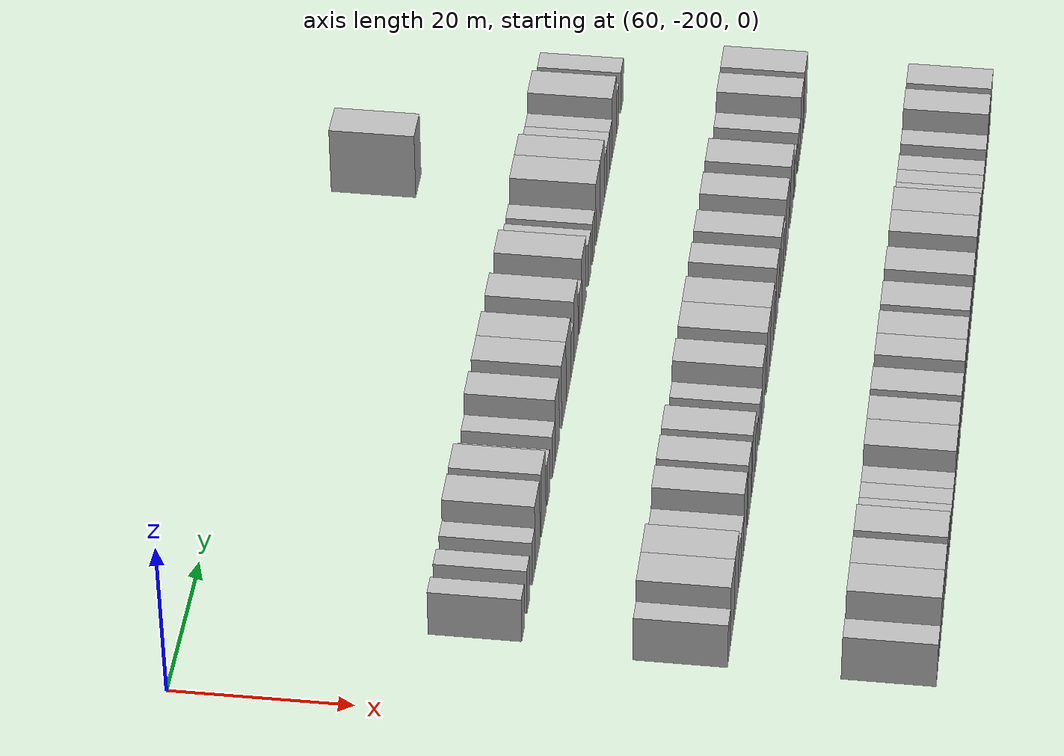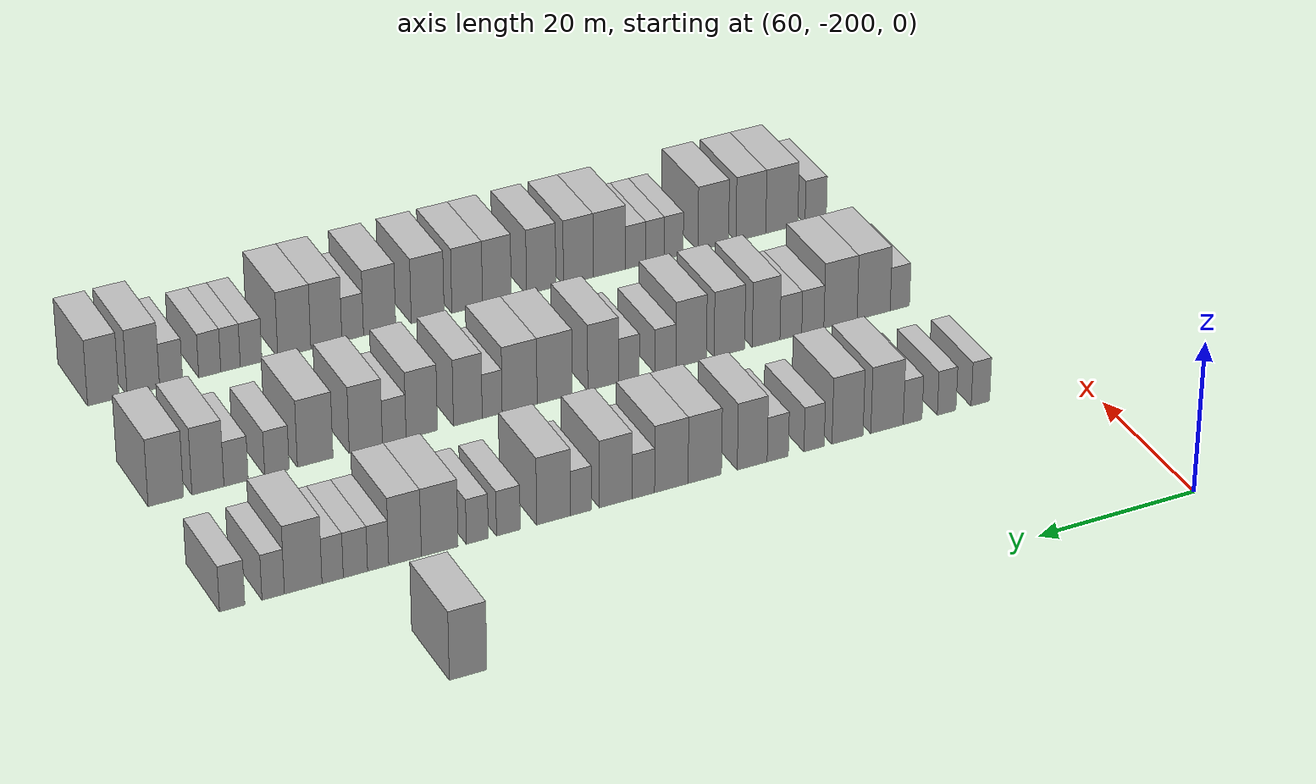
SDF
<sdf version="1.6">
 <world name="default">
  <model name="building_466">
   <static>1</static>
   <pose>69.0000 -112.4881 0 0.000000 0.000000 0.000000</pose>
   <link name="link">
    <pose>0 0 4.50 0 0 0</pose>
    <collision name="collision"><geometry><box><size>10.0000 4.3777 9.0000</size></box></geometry></collision>
    <visual name="visual">
     <cast_shadows>0</cast_shadows>
     <geometry><box><size>10.0000 4.3777 9.0000</size></box></geometry>
     <material>
      <script>
       <uri>model://HANNAS_wall/materials/scripts</uri>
       <uri>model://HANNAS_wall/materials/textures</uri>
       <name>vrc/HANNAS_wall</name>
      </script>
     </material>
    </visual>
   </link>
  </model>
  <model name="building_626">
   <static>1</static>
   <pose>91.0000 -187.1028 0 0.000000 0.000000 0.000000</pose>
   <link name="link">
    <pose>0 0 3.00 0 0 0</pose>
    <collision name="collision"><geometry><box><size>10.0000 2.4360 6.0000</size></box></geometry></collision>
    <visual name="visual">
     <cast_shadows>0</cast_shadows>
     <geometry><box><size>10.0000 2.4360 6.0000</size></box></geometry>
     <material>
      <script>
       <uri>model://HANNAS_wall/materials/scripts</uri>
       <uri>model://HANNAS_wall/materials/textures</uri>
       <name>vrc/HANNAS_wall</name>
      </script>
     </material>
    </visual>
   </link>
  </model>
  <model name="building_627">
   <static>1</static>
   <pose>91.0000 -182.6619 0 0.000000 0.000000 0.000000</pose>
   <link name="link">
    <pose>0 0 3.00 0 0 0</pose>
    <collision name="collision"><geometry><box><size>10.0000 2.4458 6.0000</size></box></geometry></collision>
    <visual name="visual">
     <cast_shadows>0</cast_shadows>
     <geometry><box><size>10.0000 2.4458 6.0000</size></box></geometry>
     <material>
      <script>
       <uri>model://HANNAS_wall/materials/scripts</uri>
       <uri>model://HANNAS_wall/materials/textures</uri>
       <name>vrc/HANNAS_wall</name>
      </script>
     </material>
    </visual>
   </link>
  </model>
  <model name="building_628">
   <static>1</static>
   <pose>91.0000 -178.2104 0 0.000000 0.000000 0.000000</pose>
   <link name="link">
    <pose>0 0 3.00 0 0 0</pose>
    <collision name="collision"><geometry><box><size>10.0000 2.4572 6.0000</size></box></geometry></collision>
    <visual name="visual">
     <cast_shadows>0</cast_shadows>
     <geometry><box><size>10.0000 2.4572 6.0000</size></box></geometry>
     <material>
      <script>
       <uri>model://HANNAS_wall/materials/scripts</uri>
       <uri>model://HANNAS_wall/materials/textures</uri>
       <name>vrc/HANNAS_wall</name>
      </script>
     </material>
    </visual>
   </link>
  </model>
  <model name="building_629">
   <static>1</static>
   <pose>91.0000 -174.8747 0 0.000000 0.000000 0.000000</pose>
   <link name="link">
    <pose>0 0 4.50 0 0 0</pose>
    <collision name="collision"><geometry><box><size>10.0000 4.2143 9.0000</size></box></geometry></collision>
    <visual name="visual">
     <cast_shadows>0</cast_shadows>
     <geometry><box><size>10.0000 4.2143 9.0000</size></box></geometry>
     <material>
      <script>
       <uri>model://HANNAS_wall/materials/scripts</uri>
       <uri>model://HANNAS_wall/materials/textures</uri>
       <name>vrc/HANNAS_wall</name>
      </script>
     </material>
    </visual>
   </link>
  </model>
  <model name="building_630">
   <static>1</static>
   <pose>91.0000 -169.7612 0 0.000000 0.000000 0.000000</pose>
   <link name="link">
    <pose>0 0 4.50 0 0 0</pose>
    <collision name="collision"><geometry><box><size>10.0000 4.0127 9.0000</size></box></geometry></collision>
    <visual name="visual">
     <cast_shadows>0</cast_shadows>
     <geometry><box><size>10.0000 4.0127 9.0000</size></box></geometry>
     <material>
      <script>
       <uri>model://HANNAS_wall/materials/scripts</uri>
       <uri>model://HANNAS_wall/materials/textures</uri>
       <name>vrc/HANNAS_wall</name>
      </script>
     </material>
    </visual>
   </link>
  </model>
  <model name="building_631">
   <static>1</static>
   <pose>91.0000 -165.4593 0 0.000000 0.000000 0.000000</pose>
   <link name="link">
    <pose>0 0 3.00 0 0 0</pose>
    <collision name="collision"><geometry><box><size>10.0000 2.5912 6.0000</size></box></geometry></collision>
    <visual name="visual">
     <cast_shadows>0</cast_shadows>
     <geometry><box><size>10.0000 2.5912 6.0000</size></box></geometry>
     <material>
      <script>
       <uri>model://HANNAS_wall/materials/scripts</uri>
       <uri>model://HANNAS_wall/materials/textures</uri>
       <name>vrc/HANNAS_wall</name>
      </script>
     </material>
    </visual>
   </link>
  </model>
  <model name="building_632">
   <static>1</static>
   <pose>91.0000 -160.8114 0 0.000000 0.000000 0.000000</pose>
   <link name="link">
    <pose>0 0 3.00 0 0 0</pose>
    <collision name="collision"><geometry><box><size>10.0000 2.7045 6.0000</size></box></geometry></collision>
    <visual name="visual">
     <cast_shadows>0</cast_shadows>
     <geometry><box><size>10.0000 2.7045 6.0000</size></box></geometry>
     <material>
      <script>
       <uri>model://HANNAS_wall/materials/scripts</uri>
       <uri>model://HANNAS_wall/materials/textures</uri>
       <name>vrc/HANNAS_wall</name>
      </script>
     </material>
    </visual>
   </link>
  </model>
  <model name="building_633">
   <static>1</static>
   <pose>91.0000 -157.5620 0 0.000000 0.000000 0.000000</pose>
   <link name="link">
    <pose>0 0 4.50 0 0 0</pose>
    <collision name="collision"><geometry><box><size>10.0000 3.7942 9.0000</size></box></geometry></collision>
    <visual name="visual">
     <cast_shadows>0</cast_shadows>
     <geometry><box><size>10.0000 3.7942 9.0000</size></box></geometry>
     <material>
      <script>
       <uri>model://HANNAS_wall/materials/scripts</uri>
       <uri>model://HANNAS_wall/materials/textures</uri>
       <name>vrc/HANNAS_wall</name>
      </script>
     </material>
    </visual>
   </link>
  </model>
  <model name="building_634">
   <static>1</static>
   <pose>91.0000 -151.5639 0 0.000000 0.000000 0.000000</pose>
   <link name="link">
    <pose>0 0 4.50 0 0 0</pose>
    <collision name="collision"><geometry><box><size>10.0000 4.2022 9.0000</size></box></geometry></collision>
    <visual name="visual">
     <cast_shadows>0</cast_shadows>
     <geometry><box><size>10.0000 4.2022 9.0000</size></box></geometry>
     <material>
      <script>
       <uri>model://HANNAS_wall/materials/scripts</uri>
       <uri>model://HANNAS_wall/materials/textures</uri>
       <name>vrc/HANNAS_wall</name>
      </script>
     </material>
    </visual>
   </link>
  </model>
  <model name="building_635">
   <static>1</static>
   <pose>91.0000 -147.3639 0 0.000000 0.000000 0.000000</pose>
   <link name="link">
    <pose>0 0 4.50 0 0 0</pose>
    <collision name="collision"><geometry><box><size>10.0000 4.1977 9.0000</size></box></geometry></collision>
    <visual name="visual">
     <cast_shadows>0</cast_shadows>
     <geometry><box><size>10.0000 4.1977 9.0000</size></box></geometry>
     <material>
      <script>
       <uri>model://HANNAS_wall/materials/scripts</uri>
       <uri>model://HANNAS_wall/materials/textures</uri>
       <name>vrc/HANNAS_wall</name>
      </script>
     </material>
    </visual>
   </link>
  </model>
  <model name="building_636">
   <static>1</static>
   <pose>91.0000 -143.8838 0 0.000000 0.000000 0.000000</pose>
   <link name="link">
    <pose>0 0 3.00 0 0 0</pose>
    <collision name="collision"><geometry><box><size>10.0000 2.7626 6.0000</size></box></geometry></collision>
    <visual name="visual">
     <cast_shadows>0</cast_shadows>
     <geometry><box><size>10.0000 2.7626 6.0000</size></box></geometry>
     <material>
      <script>
       <uri>model://HANNAS_wall/materials/scripts</uri>
       <uri>model://HANNAS_wall/materials/textures</uri>
       <name>vrc/HANNAS_wall</name>
      </script>
     </material>
    </visual>
   </link>
  </model>
  <model name="building_637">
   <static>1</static>
   <pose>91.0000 -140.4628 0 0.000000 0.000000 0.000000</pose>
   <link name="link">
    <pose>0 0 4.50 0 0 0</pose>
    <collision name="collision"><geometry><box><size>10.0000 4.0793 9.0000</size></box></geometry></collision>
    <visual name="visual">
     <cast_shadows>0</cast_shadows>
     <geometry><box><size>10.0000 4.0793 9.0000</size></box></geometry>
     <material>
      <script>
       <uri>model://HANNAS_wall/materials/scripts</uri>
       <uri>model://HANNAS_wall/materials/textures</uri>
       <name>vrc/HANNAS_wall</name>
      </script>
     </material>
    </visual>
   </link>
  </model>
  <model name="building_638">
   <static>1</static>
   <pose>91.0000 -136.1418 0 0.000000 0.000000 0.000000</pose>
   <link name="link">
    <pose>0 0 3.00 0 0 0</pose>
    <collision name="collision"><geometry><box><size>10.0000 2.5629 6.0000</size></box></geometry></collision>
    <visual name="visual">
     <cast_shadows>0</cast_shadows>
     <geometry><box><size>10.0000 2.5629 6.0000</size></box></geometry>
     <material>
      <script>
       <uri>model://HANNAS_wall/materials/scripts</uri>
       <uri>model://HANNAS_wall/materials/textures</uri>
       <name>vrc/HANNAS_wall</name>
      </script>
     </material>
    </visual>
   </link>
  </model>
  <model name="building_639">
   <static>1</static>
   <pose>91.0000 -132.7663 0 0.000000 0.000000 0.000000</pose>
   <link name="link">
    <pose>0 0 4.50 0 0 0</pose>
    <collision name="collision"><geometry><box><size>10.0000 4.1881 9.0000</size></box></geometry></collision>
    <visual name="visual">
     <cast_shadows>0</cast_shadows>
     <geometry><box><size>10.0000 4.1881 9.0000</size></box></geometry>
     <material>
      <script>
       <uri>model://HANNAS_wall/materials/scripts</uri>
       <uri>model://HANNAS_wall/materials/textures</uri>
       <name>vrc/HANNAS_wall</name>
      </script>
     </material>
    </visual>
   </link>
  </model>
  <model name="building_640">
   <static>1</static>
   <pose>91.0000 -127.2252 0 0.000000 0.000000 0.000000</pose>
   <link name="link">
    <pose>0 0 3.00 0 0 0</pose>
    <collision name="collision"><geometry><box><size>10.0000 2.8943 6.0000</size></box></geometry></collision>
    <visual name="visual">
     <cast_shadows>0</cast_shadows>
     <geometry><box><size>10.0000 2.8943 6.0000</size></box></geometry>
     <material>
      <script>
       <uri>model://HANNAS_wall/materials/scripts</uri>
       <uri>model://HANNAS_wall/materials/textures</uri>
       <name>vrc/HANNAS_wall</name>
      </script>
     </material>
    </visual>
   </link>
  </model>
  <model name="building_641">
   <static>1</static>
   <pose>91.0000 -123.4506 0 0.000000 0.000000 0.000000</pose>
   <link name="link">
    <pose>0 0 3.00 0 0 0</pose>
    <collision name="collision"><geometry><box><size>10.0000 2.6549 6.0000</size></box></geometry></collision>
    <visual name="visual">
     <cast_shadows>0</cast_shadows>
     <geometry><box><size>10.0000 2.6549 6.0000</size></box></geometry>
     <material>
      <script>
       <uri>model://HANNAS_wall/materials/scripts</uri>
       <uri>model://HANNAS_wall/materials/textures</uri>
       <name>vrc/HANNAS_wall</name>
      </script>
     </material>
    </visual>
   </link>
  </model>
  <model name="building_642">
   <static>1</static>
   <pose>91.0000 -118.9089 0 0.000000 0.000000 0.000000</pose>
   <link name="link">
    <pose>0 0 4.50 0 0 0</pose>
    <collision name="collision"><geometry><box><size>10.0000 4.4286 9.0000</size></box></geometry></collision>
    <visual name="visual">
     <cast_shadows>0</cast_shadows>
     <geometry><box><size>10.0000 4.4286 9.0000</size></box></geometry>
     <material>
      <script>
       <uri>model://HANNAS_wall/materials/scripts</uri>
       <uri>model://HANNAS_wall/materials/textures</uri>
       <name>vrc/HANNAS_wall</name>
      </script>
     </material>
    </visual>
   </link>
  </model>
  <model name="building_643">
   <static>1</static>
   <pose>91.0000 -114.7379 0 0.000000 0.000000 0.000000</pose>
   <link name="link">
    <pose>0 0 4.50 0 0 0</pose>
    <collision name="collision"><geometry><box><size>10.0000 3.9134 9.0000</size></box></geometry></collision>
    <visual name="visual">
     <cast_shadows>0</cast_shadows>
     <geometry><box><size>10.0000 3.9134 9.0000</size></box></geometry>
     <material>
      <script>
       <uri>model://HANNAS_wall/materials/scripts</uri>
       <uri>model://HANNAS_wall/materials/textures</uri>
       <name>vrc/HANNAS_wall</name>
      </script>
     </material>
    </visual>
   </link>
  </model>
  <model name="building_644">
   <static>1</static>
   <pose>91.0000 -111.5199 0 0.000000 0.000000 0.000000</pose>
   <link name="link">
    <pose>0 0 3.00 0 0 0</pose>
    <collision name="collision"><geometry><box><size>10.0000 2.5226 6.0000</size></box></geometry></collision>
    <visual name="visual">
     <cast_shadows>0</cast_shadows>
     <geometry><box><size>10.0000 2.5226 6.0000</size></box></geometry>
     <material>
      <script>
       <uri>model://HANNAS_wall/materials/scripts</uri>
       <uri>model://HANNAS_wall/materials/textures</uri>
       <name>vrc/HANNAS_wall</name>
      </script>
     </material>
    </visual>
   </link>
  </model>
  <model name="building_645">
   <static>1</static>
   <pose>91.0000 -108.8127 0 0.000000 0.000000 0.000000</pose>
   <link name="link">
    <pose>0 0 3.00 0 0 0</pose>
    <collision name="collision"><geometry><box><size>10.0000 2.8916 6.0000</size></box></geometry></collision>
    <visual name="visual">
     <cast_shadows>0</cast_shadows>
     <geometry><box><size>10.0000 2.8916 6.0000</size></box></geometry>
     <material>
      <script>
       <uri>model://HANNAS_wall/materials/scripts</uri>
       <uri>model://HANNAS_wall/materials/textures</uri>
       <name>vrc/HANNAS_wall</name>
      </script>
     </material>
    </visual>
   </link>
  </model>
  <model name="building_646">
   <static>1</static>
   <pose>91.0000 -106.1074 0 0.000000 0.000000 0.000000</pose>
   <link name="link">
    <pose>0 0 3.00 0 0 0</pose>
    <collision name="collision"><geometry><box><size>10.0000 2.5191 6.0000</size></box></geometry></collision>
    <visual name="visual">
     <cast_shadows>0</cast_shadows>
     <geometry><box><size>10.0000 2.5191 6.0000</size></box></geometry>
     <material>
      <script>
       <uri>model://HANNAS_wall/materials/scripts</uri>
       <uri>model://HANNAS_wall/materials/textures</uri>
       <name>vrc/HANNAS_wall</name>
      </script>
     </material>
    </visual>
   </link>
  </model>
  <model name="building_647">
   <static>1</static>
   <pose>91.0000 -102.6313 0 0.000000 0.000000 0.000000</pose>
   <link name="link">
    <pose>0 0 4.50 0 0 0</pose>
    <collision name="collision"><geometry><box><size>10.0000 4.4331 9.0000</size></box></geometry></collision>
    <visual name="visual">
     <cast_shadows>0</cast_shadows>
     <geometry><box><size>10.0000 4.4331 9.0000</size></box></geometry>
     <material>
      <script>
       <uri>model://HANNAS_wall/materials/scripts</uri>
       <uri>model://HANNAS_wall/materials/textures</uri>
       <name>vrc/HANNAS_wall</name>
      </script>
     </material>
    </visual>
   </link>
  </model>
  <model name="building_648">
   <static>1</static>
   <pose>91.0000 -99.0980 0 0.000000 0.000000 0.000000</pose>
   <link name="link">
    <pose>0 0 3.00 0 0 0</pose>
    <collision name="collision"><geometry><box><size>10.0000 2.6336 6.0000</size></box></geometry></collision>
    <visual name="visual">
     <cast_shadows>0</cast_shadows>
     <geometry><box><size>10.0000 2.6336 6.0000</size></box></geometry>
     <material>
      <script>
       <uri>model://HANNAS_wall/materials/scripts</uri>
       <uri>model://HANNAS_wall/materials/textures</uri>
       <name>vrc/HANNAS_wall</name>
      </script>
     </material>
    </visual>
   </link>
  </model>
  <model name="building_649">
   <static>1</static>
   <pose>91.0000 -94.3047 0 0.000000 0.000000 0.000000</pose>
   <link name="link">
    <pose>0 0 3.00 0 0 0</pose>
    <collision name="collision"><geometry><box><size>10.0000 2.9530 6.0000</size></box></geometry></collision>
    <visual name="visual">
     <cast_shadows>0</cast_shadows>
     <geometry><box><size>10.0000 2.9530 6.0000</size></box></geometry>
     <material>
      <script>
       <uri>model://HANNAS_wall/materials/scripts</uri>
       <uri>model://HANNAS_wall/materials/textures</uri>
       <name>vrc/HANNAS_wall</name>
      </script>
     </material>
    </visual>
   </link>
  </model>
  <model name="building_817">
   <static>1</static>
   <pose>113.0000 -188.4461 0 0.000000 0.000000 0.000000</pose>
   <link name="link">
    <pose>0 0 3.00 0 0 0</pose>
    <collision name="collision"><geometry><box><size>10.0000 2.6069 6.0000</size></box></geometry></collision>
    <visual name="visual">
     <cast_shadows>0</cast_shadows>
     <geometry><box><size>10.0000 2.6069 6.0000</size></box></geometry>
     <material>
      <script>
       <uri>model://HANNAS_wall/materials/scripts</uri>
       <uri>model://HANNAS_wall/materials/textures</uri>
       <name>vrc/HANNAS_wall</name>
      </script>
     </material>
    </visual>
   </link>
  </model>
  <model name="building_818">
   <static>1</static>
   <pose>113.0000 -184.9155 0 0.000000 0.000000 0.000000</pose>
   <link name="link">
    <pose>0 0 4.50 0 0 0</pose>
    <collision name="collision"><geometry><box><size>10.0000 4.4542 9.0000</size></box></geometry></collision>
    <visual name="visual">
     <cast_shadows>0</cast_shadows>
     <geometry><box><size>10.0000 4.4542 9.0000</size></box></geometry>
     <material>
      <script>
       <uri>model://HANNAS_wall/materials/scripts</uri>
       <uri>model://HANNAS_wall/materials/textures</uri>
       <name>vrc/HANNAS_wall</name>
      </script>
     </material>
    </visual>
   </link>
  </model>
  <model name="building_819">
   <static>1</static>
   <pose>113.0000 -180.4669 0 0.000000 0.000000 0.000000</pose>
   <link name="link">
    <pose>0 0 4.50 0 0 0</pose>
    <collision name="collision"><geometry><box><size>10.0000 4.4430 9.0000</size></box></geometry></collision>
    <visual name="visual">
     <cast_shadows>0</cast_shadows>
     <geometry><box><size>10.0000 4.4430 9.0000</size></box></geometry>
     <material>
      <script>
       <uri>model://HANNAS_wall/materials/scripts</uri>
       <uri>model://HANNAS_wall/materials/textures</uri>
       <name>vrc/HANNAS_wall</name>
      </script>
     </material>
    </visual>
   </link>
  </model>
  <model name="building_820">
   <static>1</static>
   <pose>113.0000 -176.7735 0 0.000000 0.000000 0.000000</pose>
   <link name="link">
    <pose>0 0 3.00 0 0 0</pose>
    <collision name="collision"><geometry><box><size>10.0000 2.9437 6.0000</size></box></geometry></collision>
    <visual name="visual">
     <cast_shadows>0</cast_shadows>
     <geometry><box><size>10.0000 2.9437 6.0000</size></box></geometry>
     <material>
      <script>
       <uri>model://HANNAS_wall/materials/scripts</uri>
       <uri>model://HANNAS_wall/materials/textures</uri>
       <name>vrc/HANNAS_wall</name>
      </script>
     </material>
    </visual>
   </link>
  </model>
  <model name="building_821">
   <static>1</static>
   <pose>113.0000 -173.8546 0 0.000000 0.000000 0.000000</pose>
   <link name="link">
    <pose>0 0 3.00 0 0 0</pose>
    <collision name="collision"><geometry><box><size>10.0000 2.8942 6.0000</size></box></geometry></collision>
    <visual name="visual">
     <cast_shadows>0</cast_shadows>
     <geometry><box><size>10.0000 2.8942 6.0000</size></box></geometry>
     <material>
      <script>
       <uri>model://HANNAS_wall/materials/scripts</uri>
       <uri>model://HANNAS_wall/materials/textures</uri>
       <name>vrc/HANNAS_wall</name>
      </script>
     </material>
    </visual>
   </link>
  </model>
  <model name="building_822">
   <static>1</static>
   <pose>113.0000 -170.5741 0 0.000000 0.000000 0.000000</pose>
   <link name="link">
    <pose>0 0 4.50 0 0 0</pose>
    <collision name="collision"><geometry><box><size>10.0000 3.6667 9.0000</size></box></geometry></collision>
    <visual name="visual">
     <cast_shadows>0</cast_shadows>
     <geometry><box><size>10.0000 3.6667 9.0000</size></box></geometry>
     <material>
      <script>
       <uri>model://HANNAS_wall/materials/scripts</uri>
       <uri>model://HANNAS_wall/materials/textures</uri>
       <name>vrc/HANNAS_wall</name>
      </script>
     </material>
    </visual>
   </link>
  </model>
  <model name="building_823">
   <static>1</static>
   <pose>113.0000 -165.7383 0 0.000000 0.000000 0.000000</pose>
   <link name="link">
    <pose>0 0 4.50 0 0 0</pose>
    <collision name="collision"><geometry><box><size>10.0000 4.0049 9.0000</size></box></geometry></collision>
    <visual name="visual">
     <cast_shadows>0</cast_shadows>
     <geometry><box><size>10.0000 4.0049 9.0000</size></box></geometry>
     <material>
      <script>
       <uri>model://HANNAS_wall/materials/scripts</uri>
       <uri>model://HANNAS_wall/materials/textures</uri>
       <name>vrc/HANNAS_wall</name>
      </script>
     </material>
    </visual>
   </link>
  </model>
  <model name="building_824">
   <static>1</static>
   <pose>113.0000 -160.7531 0 0.000000 0.000000 0.000000</pose>
   <link name="link">
    <pose>0 0 4.50 0 0 0</pose>
    <collision name="collision"><geometry><box><size>10.0000 3.9657 9.0000</size></box></geometry></collision>
    <visual name="visual">
     <cast_shadows>0</cast_shadows>
     <geometry><box><size>10.0000 3.9657 9.0000</size></box></geometry>
     <material>
      <script>
       <uri>model://HANNAS_wall/materials/scripts</uri>
       <uri>model://HANNAS_wall/materials/textures</uri>
       <name>vrc/HANNAS_wall</name>
      </script>
     </material>
    </visual>
   </link>
  </model>
  <model name="building_825">
   <static>1</static>
   <pose>113.0000 -157.3877 0 0.000000 0.000000 0.000000</pose>
   <link name="link">
    <pose>0 0 3.00 0 0 0</pose>
    <collision name="collision"><geometry><box><size>10.0000 2.7651 6.0000</size></box></geometry></collision>
    <visual name="visual">
     <cast_shadows>0</cast_shadows>
     <geometry><box><size>10.0000 2.7651 6.0000</size></box></geometry>
     <material>
      <script>
       <uri>model://HANNAS_wall/materials/scripts</uri>
       <uri>model://HANNAS_wall/materials/textures</uri>
       <name>vrc/HANNAS_wall</name>
      </script>
     </material>
    </visual>
   </link>
  </model>
  <model name="building_826">
   <static>1</static>
   <pose>113.0000 -152.6515 0 0.000000 0.000000 0.000000</pose>
   <link name="link">
    <pose>0 0 3.00 0 0 0</pose>
    <collision name="collision"><geometry><box><size>10.0000 2.7073 6.0000</size></box></geometry></collision>
    <visual name="visual">
     <cast_shadows>0</cast_shadows>
     <geometry><box><size>10.0000 2.7073 6.0000</size></box></geometry>
     <material>
      <script>
       <uri>model://HANNAS_wall/materials/scripts</uri>
       <uri>model://HANNAS_wall/materials/textures</uri>
       <name>vrc/HANNAS_wall</name>
      </script>
     </material>
    </visual>
   </link>
  </model>
  <model name="building_827">
   <static>1</static>
   <pose>113.0000 -149.3338 0 0.000000 0.000000 0.000000</pose>
   <link name="link">
    <pose>0 0 4.50 0 0 0</pose>
    <collision name="collision"><geometry><box><size>10.0000 3.9280 9.0000</size></box></geometry></collision>
    <visual name="visual">
     <cast_shadows>0</cast_shadows>
     <geometry><box><size>10.0000 3.9280 9.0000</size></box></geometry>
     <material>
      <script>
       <uri>model://HANNAS_wall/materials/scripts</uri>
       <uri>model://HANNAS_wall/materials/textures</uri>
       <name>vrc/HANNAS_wall</name>
      </script>
     </material>
    </visual>
   </link>
  </model>
  <model name="building_828">
   <static>1</static>
   <pose>113.0000 -143.1388 0 0.000000 0.000000 0.000000</pose>
   <link name="link">
    <pose>0 0 4.50 0 0 0</pose>
    <collision name="collision"><geometry><box><size>10.0000 4.4621 9.0000</size></box></geometry></collision>
    <visual name="visual">
     <cast_shadows>0</cast_shadows>
     <geometry><box><size>10.0000 4.4621 9.0000</size></box></geometry>
     <material>
      <script>
       <uri>model://HANNAS_wall/materials/scripts</uri>
       <uri>model://HANNAS_wall/materials/textures</uri>
       <name>vrc/HANNAS_wall</name>
      </script>
     </material>
    </visual>
   </link>
  </model>
  <model name="building_829">
   <static>1</static>
   <pose>113.0000 -138.6911 0 0.000000 0.000000 0.000000</pose>
   <link name="link">
    <pose>0 0 4.50 0 0 0</pose>
    <collision name="collision"><geometry><box><size>10.0000 4.4332 9.0000</size></box></geometry></collision>
    <visual name="visual">
     <cast_shadows>0</cast_shadows>
     <geometry><box><size>10.0000 4.4332 9.0000</size></box></geometry>
     <material>
      <script>
       <uri>model://HANNAS_wall/materials/scripts</uri>
       <uri>model://HANNAS_wall/materials/textures</uri>
       <name>vrc/HANNAS_wall</name>
      </script>
     </material>
    </visual>
   </link>
  </model>
  <model name="building_830">
   <static>1</static>
   <pose>113.0000 -135.2151 0 0.000000 0.000000 0.000000</pose>
   <link name="link">
    <pose>0 0 3.00 0 0 0</pose>
    <collision name="collision"><geometry><box><size>10.0000 2.5187 6.0000</size></box></geometry></collision>
    <visual name="visual">
     <cast_shadows>0</cast_shadows>
     <geometry><box><size>10.0000 2.5187 6.0000</size></box></geometry>
     <material>
      <script>
       <uri>model://HANNAS_wall/materials/scripts</uri>
       <uri>model://HANNAS_wall/materials/textures</uri>
       <name>vrc/HANNAS_wall</name>
      </script>
     </material>
    </visual>
   </link>
  </model>
  <model name="building_831">
   <static>1</static>
   <pose>113.0000 -132.1496 0 0.000000 0.000000 0.000000</pose>
   <link name="link">
    <pose>0 0 4.50 0 0 0</pose>
    <collision name="collision"><geometry><box><size>10.0000 3.6122 9.0000</size></box></geometry></collision>
    <visual name="visual">
     <cast_shadows>0</cast_shadows>
     <geometry><box><size>10.0000 3.6122 9.0000</size></box></geometry>
     <material>
      <script>
       <uri>model://HANNAS_wall/materials/scripts</uri>
       <uri>model://HANNAS_wall/materials/textures</uri>
       <name>vrc/HANNAS_wall</name>
      </script>
     </material>
    </visual>
   </link>
  </model>
  <model name="building_832">
   <static>1</static>
   <pose>113.0000 -126.3850 0 0.000000 0.000000 0.000000</pose>
   <link name="link">
    <pose>0 0 4.50 0 0 0</pose>
    <collision name="collision"><geometry><box><size>10.0000 3.9170 9.0000</size></box></geometry></collision>
    <visual name="visual">
     <cast_shadows>0</cast_shadows>
     <geometry><box><size>10.0000 3.9170 9.0000</size></box></geometry>
     <material>
      <script>
       <uri>model://HANNAS_wall/materials/scripts</uri>
       <uri>model://HANNAS_wall/materials/textures</uri>
       <name>vrc/HANNAS_wall</name>
      </script>
     </material>
    </visual>
   </link>
  </model>
  <model name="building_833">
   <static>1</static>
   <pose>113.0000 -122.9573 0 0.000000 0.000000 0.000000</pose>
   <link name="link">
    <pose>0 0 3.00 0 0 0</pose>
    <collision name="collision"><geometry><box><size>10.0000 2.9385 6.0000</size></box></geometry></collision>
    <visual name="visual">
     <cast_shadows>0</cast_shadows>
     <geometry><box><size>10.0000 2.9385 6.0000</size></box></geometry>
     <material>
      <script>
       <uri>model://HANNAS_wall/materials/scripts</uri>
       <uri>model://HANNAS_wall/materials/textures</uri>
       <name>vrc/HANNAS_wall</name>
      </script>
     </material>
    </visual>
   </link>
  </model>
  <model name="building_834">
   <static>1</static>
   <pose>113.0000 -119.4372 0 0.000000 0.000000 0.000000</pose>
   <link name="link">
    <pose>0 0 4.50 0 0 0</pose>
    <collision name="collision"><geometry><box><size>10.0000 4.1016 9.0000</size></box></geometry></collision>
    <visual name="visual">
     <cast_shadows>0</cast_shadows>
     <geometry><box><size>10.0000 4.1016 9.0000</size></box></geometry>
     <material>
      <script>
       <uri>model://HANNAS_wall/materials/scripts</uri>
       <uri>model://HANNAS_wall/materials/textures</uri>
       <name>vrc/HANNAS_wall</name>
      </script>
     </material>
    </visual>
   </link>
  </model>
  <model name="building_835">
   <static>1</static>
   <pose>113.0000 -113.2027 0 0.000000 0.000000 0.000000</pose>
   <link name="link">
    <pose>0 0 4.50 0 0 0</pose>
    <collision name="collision"><geometry><box><size>10.0000 4.3675 9.0000</size></box></geometry></collision>
    <visual name="visual">
     <cast_shadows>0</cast_shadows>
     <geometry><box><size>10.0000 4.3675 9.0000</size></box></geometry>
     <material>
      <script>
       <uri>model://HANNAS_wall/materials/scripts</uri>
       <uri>model://HANNAS_wall/materials/textures</uri>
       <name>vrc/HANNAS_wall</name>
      </script>
     </material>
    </visual>
   </link>
  </model>
  <model name="building_836">
   <static>1</static>
   <pose>113.0000 -108.5262 0 0.000000 0.000000 0.000000</pose>
   <link name="link">
    <pose>0 0 3.00 0 0 0</pose>
    <collision name="collision"><geometry><box><size>10.0000 2.9854 6.0000</size></box></geometry></collision>
    <visual name="visual">
     <cast_shadows>0</cast_shadows>
     <geometry><box><size>10.0000 2.9854 6.0000</size></box></geometry>
     <material>
      <script>
       <uri>model://HANNAS_wall/materials/scripts</uri>
       <uri>model://HANNAS_wall/materials/textures</uri>
       <name>vrc/HANNAS_wall</name>
      </script>
     </material>
    </visual>
   </link>
  </model>
  <model name="building_837">
   <static>1</static>
   <pose>113.0000 -103.5625 0 0.000000 0.000000 0.000000</pose>
   <link name="link">
    <pose>0 0 3.00 0 0 0</pose>
    <collision name="collision"><geometry><box><size>10.0000 2.9421 6.0000</size></box></geometry></collision>
    <visual name="visual">
     <cast_shadows>0</cast_shadows>
     <geometry><box><size>10.0000 2.9421 6.0000</size></box></geometry>
     <material>
      <script>
       <uri>model://HANNAS_wall/materials/scripts</uri>
       <uri>model://HANNAS_wall/materials/textures</uri>
       <name>vrc/HANNAS_wall</name>
      </script>
     </material>
    </visual>
   </link>
  </model>
  <model name="building_838">
   <static>1</static>
   <pose>113.0000 -100.1644 0 0.000000 0.000000 0.000000</pose>
   <link name="link">
    <pose>0 0 4.50 0 0 0</pose>
    <collision name="collision"><geometry><box><size>10.0000 3.8540 9.0000</size></box></geometry></collision>
    <visual name="visual">
     <cast_shadows>0</cast_shadows>
     <geometry><box><size>10.0000 3.8540 9.0000</size></box></geometry>
     <material>
      <script>
       <uri>model://HANNAS_wall/materials/scripts</uri>
       <uri>model://HANNAS_wall/materials/textures</uri>
       <name>vrc/HANNAS_wall</name>
      </script>
     </material>
    </visual>
   </link>
  </model>
  <model name="building_839">
   <static>1</static>
   <pose>113.0000 -95.1141 0 0.000000 0.000000 0.000000</pose>
   <link name="link">
    <pose>0 0 4.50 0 0 0</pose>
    <collision name="collision"><geometry><box><size>10.0000 4.2465 9.0000</size></box></geometry></collision>
    <visual name="visual">
     <cast_shadows>0</cast_shadows>
     <geometry><box><size>10.0000 4.2465 9.0000</size></box></geometry>
     <material>
      <script>
       <uri>model://HANNAS_wall/materials/scripts</uri>
       <uri>model://HANNAS_wall/materials/textures</uri>
       <name>vrc/HANNAS_wall</name>
      </script>
     </material>
    </visual>
   </link>
  </model>
  <model name="building_1008">
   <static>1</static>
   <pose>135.0000 -188.6480 0 0.000000 0.000000 0.000000</pose>
   <link name="link">
    <pose>0 0 3.00 0 0 0</pose>
    <collision name="collision"><geometry><box><size>10.0000 2.9316 6.0000</size></box></geometry></collision>
    <visual name="visual">
     <cast_shadows>0</cast_shadows>
     <geometry><box><size>10.0000 2.9316 6.0000</size></box></geometry>
     <material>
      <script>
       <uri>model://HANNAS_wall/materials/scripts</uri>
       <uri>model://HANNAS_wall/materials/textures</uri>
       <name>vrc/HANNAS_wall</name>
      </script>
     </material>
    </visual>
   </link>
  </model>
  <model name="building_1009">
   <static>1</static>
   <pose>135.0000 -183.9810 0 0.000000 0.000000 0.000000</pose>
   <link name="link">
    <pose>0 0 4.50 0 0 0</pose>
    <collision name="collision"><geometry><box><size>10.0000 4.4025 9.0000</size></box></geometry></collision>
    <visual name="visual">
     <cast_shadows>0</cast_shadows>
     <geometry><box><size>10.0000 4.4025 9.0000</size></box></geometry>
     <material>
      <script>
       <uri>model://HANNAS_wall/materials/scripts</uri>
       <uri>model://HANNAS_wall/materials/textures</uri>
       <name>vrc/HANNAS_wall</name>
      </script>
     </material>
    </visual>
   </link>
  </model>
  <model name="building_1010">
   <static>1</static>
   <pose>135.0000 -179.7410 0 0.000000 0.000000 0.000000</pose>
   <link name="link">
    <pose>0 0 4.50 0 0 0</pose>
    <collision name="collision"><geometry><box><size>10.0000 4.0776 9.0000</size></box></geometry></collision>
    <visual name="visual">
     <cast_shadows>0</cast_shadows>
     <geometry><box><size>10.0000 4.0776 9.0000</size></box></geometry>
     <material>
      <script>
       <uri>model://HANNAS_wall/materials/scripts</uri>
       <uri>model://HANNAS_wall/materials/textures</uri>
       <name>vrc/HANNAS_wall</name>
      </script>
     </material>
    </visual>
   </link>
  </model>
  <model name="building_1011">
   <static>1</static>
   <pose>135.0000 -174.6290 0 0.000000 0.000000 0.000000</pose>
   <link name="link">
    <pose>0 0 4.50 0 0 0</pose>
    <collision name="collision"><geometry><box><size>10.0000 4.1463 9.0000</size></box></geometry></collision>
    <visual name="visual">
     <cast_shadows>0</cast_shadows>
     <geometry><box><size>10.0000 4.1463 9.0000</size></box></geometry>
     <material>
      <script>
       <uri>model://HANNAS_wall/materials/scripts</uri>
       <uri>model://HANNAS_wall/materials/textures</uri>
       <name>vrc/HANNAS_wall</name>
      </script>
     </material>
    </visual>
   </link>
  </model>
  <model name="building_1012">
   <static>1</static>
   <pose>135.0000 -169.2913 0 0.000000 0.000000 0.000000</pose>
   <link name="link">
    <pose>0 0 3.00 0 0 0</pose>
    <collision name="collision"><geometry><box><size>10.0000 2.5293 6.0000</size></box></geometry></collision>
    <visual name="visual">
     <cast_shadows>0</cast_shadows>
     <geometry><box><size>10.0000 2.5293 6.0000</size></box></geometry>
     <material>
      <script>
       <uri>model://HANNAS_wall/materials/scripts</uri>
       <uri>model://HANNAS_wall/materials/textures</uri>
       <name>vrc/HANNAS_wall</name>
      </script>
     </material>
    </visual>
   </link>
  </model>
  <model name="building_1013">
   <static>1</static>
   <pose>135.0000 -166.7764 0 0.000000 0.000000 0.000000</pose>
   <link name="link">
    <pose>0 0 3.00 0 0 0</pose>
    <collision name="collision"><geometry><box><size>10.0000 2.5004 6.0000</size></box></geometry></collision>
    <visual name="visual">
     <cast_shadows>0</cast_shadows>
     <geometry><box><size>10.0000 2.5004 6.0000</size></box></geometry>
     <material>
      <script>
       <uri>model://HANNAS_wall/materials/scripts</uri>
       <uri>model://HANNAS_wall/materials/textures</uri>
       <name>vrc/HANNAS_wall</name>
      </script>
     </material>
    </visual>
   </link>
  </model>
  <model name="building_1014">
   <static>1</static>
   <pose>135.0000 -164.1703 0 0.000000 0.000000 0.000000</pose>
   <link name="link">
    <pose>0 0 3.00 0 0 0</pose>
    <collision name="collision"><geometry><box><size>10.0000 2.7118 6.0000</size></box></geometry></collision>
    <visual name="visual">
     <cast_shadows>0</cast_shadows>
     <geometry><box><size>10.0000 2.7118 6.0000</size></box></geometry>
     <material>
      <script>
       <uri>model://HANNAS_wall/materials/scripts</uri>
       <uri>model://HANNAS_wall/materials/textures</uri>
       <name>vrc/HANNAS_wall</name>
      </script>
     </material>
    </visual>
   </link>
  </model>
  <model name="building_1015">
   <static>1</static>
   <pose>135.0000 -160.6524 0 0.000000 0.000000 0.000000</pose>
   <link name="link">
    <pose>0 0 4.50 0 0 0</pose>
    <collision name="collision"><geometry><box><size>10.0000 4.3241 9.0000</size></box></geometry></collision>
    <visual name="visual">
     <cast_shadows>0</cast_shadows>
     <geometry><box><size>10.0000 4.3241 9.0000</size></box></geometry>
     <material>
      <script>
       <uri>model://HANNAS_wall/materials/scripts</uri>
       <uri>model://HANNAS_wall/materials/textures</uri>
       <name>vrc/HANNAS_wall</name>
      </script>
     </material>
    </visual>
   </link>
  </model>
  <model name="building_1016">
   <static>1</static>
   <pose>135.0000 -156.5135 0 0.000000 0.000000 0.000000</pose>
   <link name="link">
    <pose>0 0 4.50 0 0 0</pose>
    <collision name="collision"><geometry><box><size>10.0000 3.9536 9.0000</size></box></geometry></collision>
    <visual name="visual">
     <cast_shadows>0</cast_shadows>
     <geometry><box><size>10.0000 3.9536 9.0000</size></box></geometry>
     <material>
      <script>
       <uri>model://HANNAS_wall/materials/scripts</uri>
       <uri>model://HANNAS_wall/materials/textures</uri>
       <name>vrc/HANNAS_wall</name>
      </script>
     </material>
    </visual>
   </link>
  </model>
  <model name="building_1017">
   <static>1</static>
   <pose>135.0000 -151.5991 0 0.000000 0.000000 0.000000</pose>
   <link name="link">
    <pose>0 0 4.50 0 0 0</pose>
    <collision name="collision"><geometry><box><size>10.0000 3.8754 9.0000</size></box></geometry></collision>
    <visual name="visual">
     <cast_shadows>0</cast_shadows>
     <geometry><box><size>10.0000 3.8754 9.0000</size></box></geometry>
     <material>
      <script>
       <uri>model://HANNAS_wall/materials/scripts</uri>
       <uri>model://HANNAS_wall/materials/textures</uri>
       <name>vrc/HANNAS_wall</name>
      </script>
     </material>
    </visual>
   </link>
  </model>
  <model name="building_1018">
   <static>1</static>
   <pose>135.0000 -145.7829 0 0.000000 0.000000 0.000000</pose>
   <link name="link">
    <pose>0 0 4.50 0 0 0</pose>
    <collision name="collision"><geometry><box><size>10.0000 3.7569 9.0000</size></box></geometry></collision>
    <visual name="visual">
     <cast_shadows>0</cast_shadows>
     <geometry><box><size>10.0000 3.7569 9.0000</size></box></geometry>
     <material>
      <script>
       <uri>model://HANNAS_wall/materials/scripts</uri>
       <uri>model://HANNAS_wall/materials/textures</uri>
       <name>vrc/HANNAS_wall</name>
      </script>
     </material>
    </visual>
   </link>
  </model>
  <model name="building_1019">
   <static>1</static>
   <pose>135.0000 -141.9083 0 0.000000 0.000000 0.000000</pose>
   <link name="link">
    <pose>0 0 4.50 0 0 0</pose>
    <collision name="collision"><geometry><box><size>10.0000 3.9923 9.0000</size></box></geometry></collision>
    <visual name="visual">
     <cast_shadows>0</cast_shadows>
     <geometry><box><size>10.0000 3.9923 9.0000</size></box></geometry>
     <material>
      <script>
       <uri>model://HANNAS_wall/materials/scripts</uri>
       <uri>model://HANNAS_wall/materials/textures</uri>
       <name>vrc/HANNAS_wall</name>
      </script>
     </material>
    </visual>
   </link>
  </model>
  <model name="building_1020">
   <static>1</static>
   <pose>135.0000 -136.7821 0 0.000000 0.000000 0.000000</pose>
   <link name="link">
    <pose>0 0 4.50 0 0 0</pose>
    <collision name="collision"><geometry><box><size>10.0000 4.2601 9.0000</size></box></geometry></collision>
    <visual name="visual">
     <cast_shadows>0</cast_shadows>
     <geometry><box><size>10.0000 4.2601 9.0000</size></box></geometry>
     <material>
      <script>
       <uri>model://HANNAS_wall/materials/scripts</uri>
       <uri>model://HANNAS_wall/materials/textures</uri>
       <name>vrc/HANNAS_wall</name>
      </script>
     </material>
    </visual>
   </link>
  </model>
  <model name="building_1021">
   <static>1</static>
   <pose>135.0000 -130.5813 0 0.000000 0.000000 0.000000</pose>
   <link name="link">
    <pose>0 0 4.50 0 0 0</pose>
    <collision name="collision"><geometry><box><size>10.0000 4.1414 9.0000</size></box></geometry></collision>
    <visual name="visual">
     <cast_shadows>0</cast_shadows>
     <geometry><box><size>10.0000 4.1414 9.0000</size></box></geometry>
     <material>
      <script>
       <uri>model://HANNAS_wall/materials/scripts</uri>
       <uri>model://HANNAS_wall/materials/textures</uri>
       <name>vrc/HANNAS_wall</name>
      </script>
     </material>
    </visual>
   </link>
  </model>
  <model name="building_1022">
   <static>1</static>
   <pose>135.0000 -127.1310 0 0.000000 0.000000 0.000000</pose>
   <link name="link">
    <pose>0 0 3.00 0 0 0</pose>
    <collision name="collision"><geometry><box><size>10.0000 2.7593 6.0000</size></box></geometry></collision>
    <visual name="visual">
     <cast_shadows>0</cast_shadows>
     <geometry><box><size>10.0000 2.7593 6.0000</size></box></geometry>
     <material>
      <script>
       <uri>model://HANNAS_wall/materials/scripts</uri>
       <uri>model://HANNAS_wall/materials/textures</uri>
       <name>vrc/HANNAS_wall</name>
      </script>
     </material>
    </visual>
   </link>
  </model>
  <model name="building_1023">
   <static>1</static>
   <pose>135.0000 -123.7752 0 0.000000 0.000000 0.000000</pose>
   <link name="link">
    <pose>0 0 4.50 0 0 0</pose>
    <collision name="collision"><geometry><box><size>10.0000 3.9522 9.0000</size></box></geometry></collision>
    <visual name="visual">
     <cast_shadows>0</cast_shadows>
     <geometry><box><size>10.0000 3.9522 9.0000</size></box></geometry>
     <material>
      <script>
       <uri>model://HANNAS_wall/materials/scripts</uri>
       <uri>model://HANNAS_wall/materials/textures</uri>
       <name>vrc/HANNAS_wall</name>
      </script>
     </material>
    </visual>
   </link>
  </model>
  <model name="building_1024">
   <static>1</static>
   <pose>135.0000 -119.7059 0 0.000000 0.000000 0.000000</pose>
   <link name="link">
    <pose>0 0 4.50 0 0 0</pose>
    <collision name="collision"><geometry><box><size>10.0000 4.1864 9.0000</size></box></geometry></collision>
    <visual name="visual">
     <cast_shadows>0</cast_shadows>
     <geometry><box><size>10.0000 4.1864 9.0000</size></box></geometry>
     <material>
      <script>
       <uri>model://HANNAS_wall/materials/scripts</uri>
       <uri>model://HANNAS_wall/materials/textures</uri>
       <name>vrc/HANNAS_wall</name>
      </script>
     </material>
    </visual>
   </link>
  </model>
  <model name="building_1025">
   <static>1</static>
   <pose>135.0000 -114.2498 0 0.000000 0.000000 0.000000</pose>
   <link name="link">
    <pose>0 0 3.00 0 0 0</pose>
    <collision name="collision"><geometry><box><size>10.0000 2.7257 6.0000</size></box></geometry></collision>
    <visual name="visual">
     <cast_shadows>0</cast_shadows>
     <geometry><box><size>10.0000 2.7257 6.0000</size></box></geometry>
     <material>
      <script>
       <uri>model://HANNAS_wall/materials/scripts</uri>
       <uri>model://HANNAS_wall/materials/textures</uri>
       <name>vrc/HANNAS_wall</name>
      </script>
     </material>
    </visual>
   </link>
  </model>
  <model name="building_1026">
   <static>1</static>
   <pose>135.0000 -111.6671 0 0.000000 0.000000 0.000000</pose>
   <link name="link">
    <pose>0 0 3.00 0 0 0</pose>
    <collision name="collision"><geometry><box><size>10.0000 2.4397 6.0000</size></box></geometry></collision>
    <visual name="visual">
     <cast_shadows>0</cast_shadows>
     <geometry><box><size>10.0000 2.4397 6.0000</size></box></geometry>
     <material>
      <script>
       <uri>model://HANNAS_wall/materials/scripts</uri>
       <uri>model://HANNAS_wall/materials/textures</uri>
       <name>vrc/HANNAS_wall</name>
      </script>
     </material>
    </visual>
   </link>
  </model>
  <model name="building_1027">
   <static>1</static>
   <pose>135.0000 -109.0694 0 0.000000 0.000000 0.000000</pose>
   <link name="link">
    <pose>0 0 3.00 0 0 0</pose>
    <collision name="collision"><geometry><box><size>10.0000 2.7556 6.0000</size></box></geometry></collision>
    <visual name="visual">
     <cast_shadows>0</cast_shadows>
     <geometry><box><size>10.0000 2.7556 6.0000</size></box></geometry>
     <material>
      <script>
       <uri>model://HANNAS_wall/materials/scripts</uri>
       <uri>model://HANNAS_wall/materials/textures</uri>
       <name>vrc/HANNAS_wall</name>
      </script>
     </material>
    </visual>
   </link>
  </model>
  <model name="building_1028">
   <static>1</static>
   <pose>135.0000 -104.2585 0 0.000000 0.000000 0.000000</pose>
   <link name="link">
    <pose>0 0 3.00 0 0 0</pose>
    <collision name="collision"><geometry><box><size>10.0000 2.8663 6.0000</size></box></geometry></collision>
    <visual name="visual">
     <cast_shadows>0</cast_shadows>
     <geometry><box><size>10.0000 2.8663 6.0000</size></box></geometry>
     <material>
      <script>
       <uri>model://HANNAS_wall/materials/scripts</uri>
       <uri>model://HANNAS_wall/materials/textures</uri>
       <name>vrc/HANNAS_wall</name>
      </script>
     </material>
    </visual>
   </link>
  </model>
  <model name="building_1029">
   <static>1</static>
   <pose>135.0000 -100.8243 0 0.000000 0.000000 0.000000</pose>
   <link name="link">
    <pose>0 0 4.50 0 0 0</pose>
    <collision name="collision"><geometry><box><size>10.0000 4.0020 9.0000</size></box></geometry></collision>
    <visual name="visual">
     <cast_shadows>0</cast_shadows>
     <geometry><box><size>10.0000 4.0020 9.0000</size></box></geometry>
     <material>
      <script>
       <uri>model://HANNAS_wall/materials/scripts</uri>
       <uri>model://HANNAS_wall/materials/textures</uri>
       <name>vrc/HANNAS_wall</name>
      </script>
     </material>
    </visual>
   </link>
  </model>
  <model name="building_1030">
   <static>1</static>
   <pose>135.0000 -95.8873 0 0.000000 0.000000 0.000000</pose>
   <link name="link">
    <pose>0 0 4.50 0 0 0</pose>
    <collision name="collision"><geometry><box><size>10.0000 3.8719 9.0000</size></box></geometry></collision>
    <visual name="visual">
     <cast_shadows>0</cast_shadows>
     <geometry><box><size>10.0000 3.8719 9.0000</size></box></geometry>
     <material>
      <script>
       <uri>model://HANNAS_wall/materials/scripts</uri>
       <uri>model://HANNAS_wall/materials/textures</uri>
       <name>vrc/HANNAS_wall</name>
      </script>
     </material>
    </visual>
   </link>
  </model>
 </world>
</sdf>
